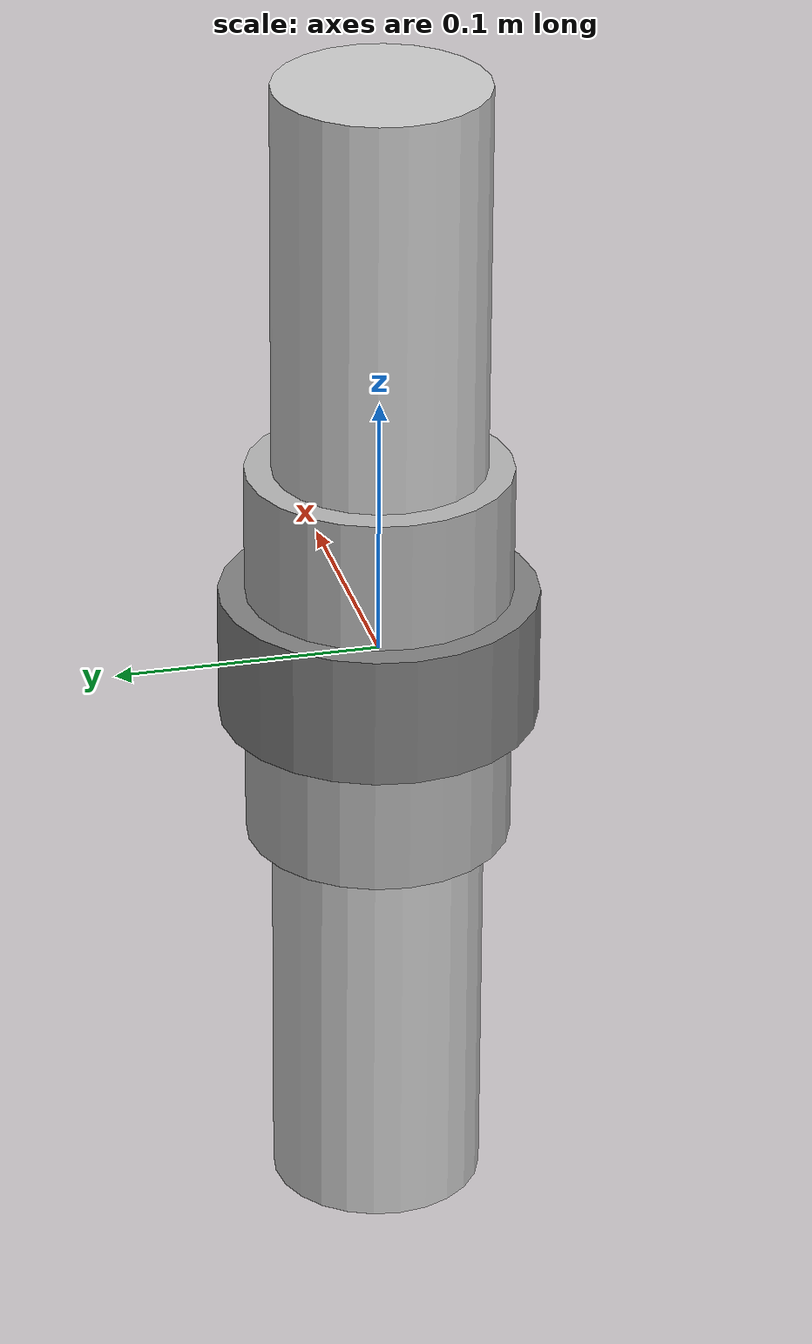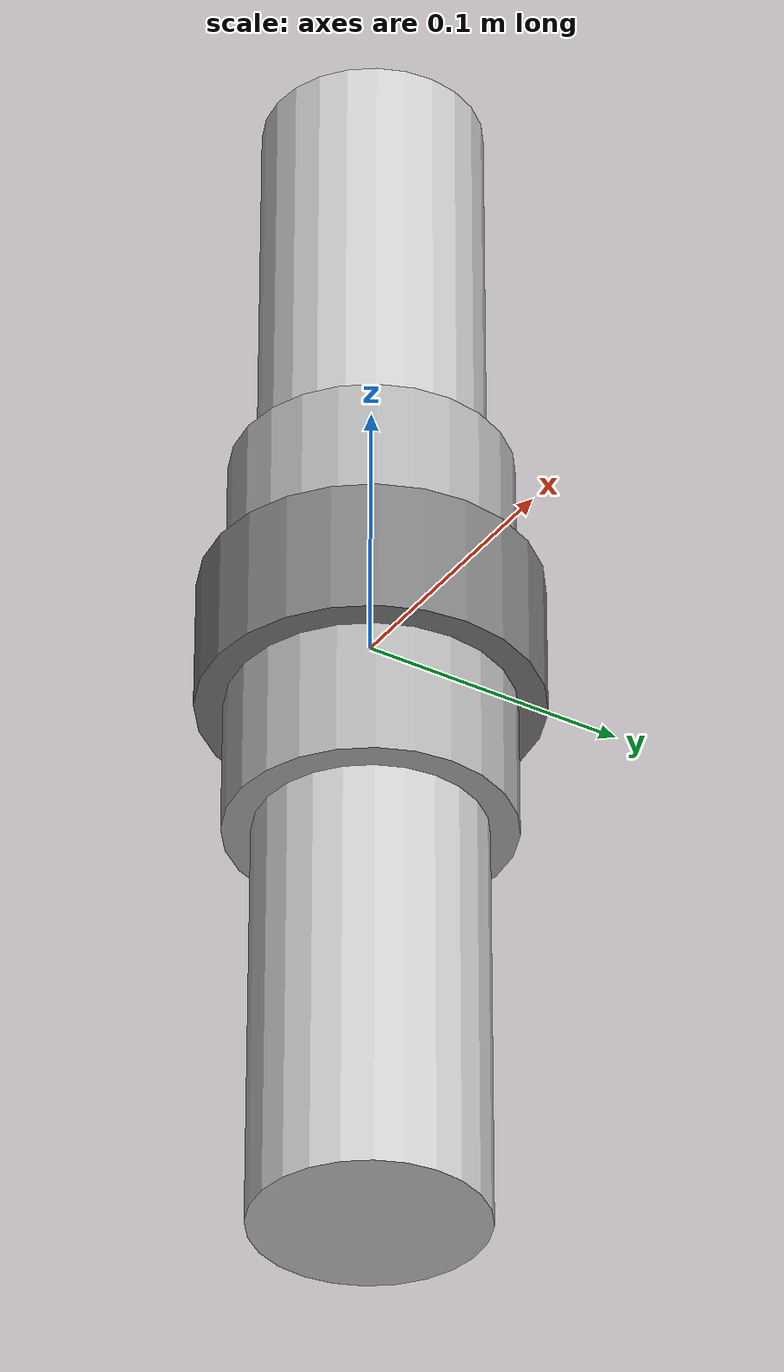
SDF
<?xml version="1.0"?>
<sdf version="1.7">
  <model name="ur5">
    <static>false</static>
    <!-- Base Link -->
    <link name="base_link">
      <inertial>
        <mass>5.0</mass>
        <inertia>
          <ixx>0.01</ixx><ixy>0</ixy><ixz>0</ixz>
          <iyy>0.01</iyy><iyz>0</iyz>
          <izz>0.02</izz>
        </inertia>
      </inertial>
      <collision name="base_collision">
        <geometry><cylinder><radius>0.06</radius><length>0.05</length></cylinder></geometry>
      </collision>
      <visual name="base_visual">
        <geometry><cylinder><radius>0.06</radius><length>0.05</length></cylinder></geometry>
        <material><ambient>0.5 0.5 0.5 1</ambient></material>
      </visual>
    </link>
    <!-- Shoulder Link -->
    <link name="shoulder_link">
      <inertial>
        <mass>3.5</mass>
        <inertia>
          <ixx>0.01</ixx><ixy>0</ixy><ixz>0</ixz>
          <iyy>0.01</iyy><iyz>0</iyz>
          <izz>0.005</izz>
        </inertia>
      </inertial>
      <collision name="shoulder_collision">
        <geometry><cylinder><radius>0.05</radius><length>0.15</length></cylinder></geometry>
      </collision>
      <visual name="shoulder_visual">
        <geometry><cylinder><radius>0.05</radius><length>0.15</length></cylinder></geometry>
        <material><ambient>0.7 0.7 0.7 1</ambient></material>
      </visual>
    </link>
    <!-- Upper Arm Link -->
    <link name="upper_arm_link">
      <inertial>
        <mass>4.0</mass>
        <inertia>
          <ixx>0.02</ixx><ixy>0</ixy><ixz>0</ixz>
          <iyy>0.02</iyy><iyz>0</iyz>
          <izz>0.001</izz>
        </inertia>
      </inertial>
      <collision name="upper_arm_collision">
        <geometry><cylinder><radius>0.04</radius><length>0.45</length></cylinder></geometry>
      </collision>
      <visual name="upper_arm_visual">
        <geometry><cylinder><radius>0.04</radius><length>0.45</length></cylinder></geometry>
        <material><ambient>0.8 0.8 0.8 1</ambient></material>
      </visual>
    </link>
    <!-- Forearm Link -->
    <link name="forearm_link">
      <inertial>
        <mass>2.5</mass>
        <inertia>
          <ixx>0.01</ixx><ixy>0</ixy><ixz>0</ixz>
          <iyy>0.01</iyy><iyz>0</iyz>
          <izz>0.001</izz>
        </inertia>
      </inertial>
      <collision name="forearm_collision">
        <geometry><cylinder><radius>0.03</radius><length>0.40</length></cylinder></geometry>
      </collision>
      <visual name="forearm_visual">
        <geometry><cylinder><radius>0.03</radius><length>0.40</length></cylinder></geometry>
        <material><ambient>0.9 0.9 0.9 1</ambient></material>
      </visual>
    </link>
    <!-- Wrist 1 Link -->
    <link name="wrist_1_link">
      <inertial>
        <mass>1.0</mass>
        <inertia>
          <ixx>0.002</ixx><ixy>0</ixy><ixz>0</ixz>
          <iyy>0.002</iyy><iyz>0</iyz>
          <izz>0.001</izz>
        </inertia>
      </inertial>
      <collision name="wrist_1_collision">
        <geometry><cylinder><radius>0.03</radius><length>0.10</length></cylinder></geometry>
      </collision>
      <visual name="wrist_1_visual">
        <geometry><cylinder><radius>0.03</radius><length>0.10</length></cylinder></geometry>
        <material><ambient>0.6 0.6 0.6 1</ambient></material>
      </visual>
    </link>
    <!-- Wrist 2 Link -->
    <link name="wrist_2_link">
      <inertial>
        <mass>0.8</mass>
        <inertia>
          <ixx>0.001</ixx><ixy>0</ixy><ixz>0</ixz>
          <iyy>0.001</iyy><iyz>0</iyz>
          <izz>0.001</izz>
        </inertia>
      </inertial>
      <collision name="wrist_2_collision">
        <geometry><cylinder><radius>0.025</radius><length>0.08</length></cylinder></geometry>
      </collision>
      <visual name="wrist_2_visual">
        <geometry><cylinder><radius>0.025</radius><length>0.08</length></cylinder></geometry>
        <material><ambient>0.5 0.5 0.5 1</ambient></material>
      </visual>
    </link>
    <!-- Wrist 3 Link (flange) -->
    <link name="wrist_3_link">
      <inertial>
        <mass>0.5</mass>
        <inertia>
          <ixx>0.0005</ixx><ixy>0</ixy><ixz>0</ixz>
          <iyy>0.0005</iyy><iyz>0</iyz>
          <izz>0.0005</izz>
        </inertia>
      </inertial>
      <collision name="wrist_3_collision">
        <geometry><cylinder><radius>0.025</radius><length>0.05</length></cylinder></geometry>
      </collision>
      <visual name="wrist_3_visual">
        <geometry><cylinder><radius>0.025</radius><length>0.05</length></cylinder></geometry>
        <material><ambient>0.4 0.4 0.4 1</ambient></material>
      </visual>
    </link>
    <!-- End Effector -->
    <link name="tool0">
      <inertial>
        <mass>0.1</mass>
        <inertia>
          <ixx>0.0001</ixx><ixy>0</ixy><ixz>0</ixz>
          <iyy>0.0001</iyy><iyz>0</iyz>
          <izz>0.0001</izz>
        </inertia>
      </inertial>
      <collision name="tool0_collision">
        <geometry><box><size>0.02 0.02 0.05</size></box></geometry>
      </collision>
      <visual name="tool0_visual">
        <geometry><box><size>0.02 0.02 0.05</size></box></geometry>
        <material><ambient>0.2 0.6 0.2 1</ambient></material>
      </visual>
    </link>
    <!-- Joints -->
    <joint name="base_joint" type="revolute">
      <parent>base_link</parent>
      <child>shoulder_link</child>
      <axis>0 0 1</axis>
      <pose>0 0 0.025 0 0 0</pose>
    </joint>
    <joint name="shoulder_joint" type="revolute">
      <parent>shoulder_link</parent>
      <child>upper_arm_link</child>
      <axis>0 1 0</axis>
      <pose>0 0 0.075 0 0 0</pose>
    </joint>
    <joint name="elbow_joint" type="revolute">
      <parent>upper_arm_link</parent>
      <child>forearm_link</child>
      <axis>0 1 0</axis>
      <pose>0 0 0.225 0 0 0</pose>
    </joint>
    <joint name="wrist_1_joint" type="revolute">
      <parent>forearm_link</parent>
      <child>wrist_1_link</child>
      <axis>0 1 0</axis>
      <pose>0 0 0.20 0 0 0</pose>
    </joint>
    <joint name="wrist_2_joint" type="revolute">
      <parent>wrist_1_link</parent>
      <child>wrist_2_link</child>
      <axis>0 0 1</axis>
      <pose>0 0 0.05 0 0 0</pose>
    </joint>
    <joint name="wrist_3_joint" type="revolute">
      <parent>wrist_2_link</parent>
      <child>wrist_3_link</child>
      <axis>0 1 0</axis>
      <pose>0 0 0.04 0 0 0</pose>
    </joint>
    <joint name="flange_joint" type="fixed">
      <parent>wrist_3_link</parent>
      <child>tool0</child>
      <pose>0 0 0.025 0 0 0</pose>
    </joint>
  </model>
</sdf>
